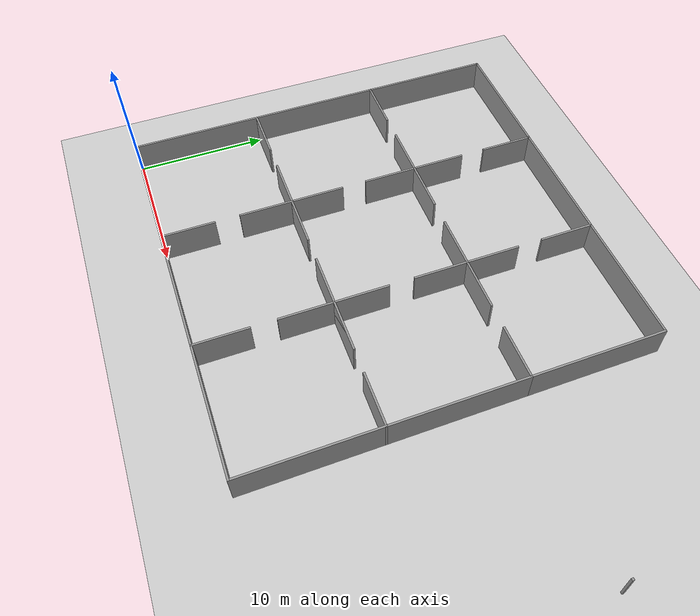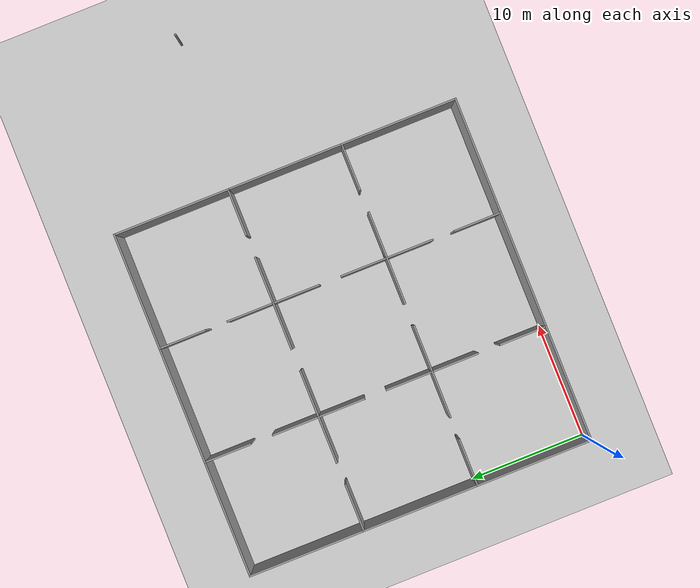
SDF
<sdf version="1.7">
 <world name="default">
  <light name="sun" type="directional">
   <pose>0 0 10 0 -0 0</pose>
   <diffuse>0.8 0.8 0.8 1</diffuse>
   <specular>0.2 0.2 0.2 1</specular>
   <attenuation>
    <range>1000</range>
    <constant>0.9</constant>
    <linear>0.01</linear>
    <quadratic>0.001</quadratic>
   </attenuation>
   <direction>-0.5 0.1 -0.9</direction>
   <spot><inner_angle>0</inner_angle><outer_angle>0</outer_angle><falloff>0</falloff></spot>
  </light>
  <model name="ground_plane">
   <static>1</static>
   <link name="link">
    <collision name="collision">
     <geometry><plane><normal>0 0 1</normal><size>100 100</size></plane></geometry>
     <surface>
      <contact><collide_bitmask>65535</collide_bitmask></contact>
      <friction><ode><mu>100</mu><mu2>50</mu2></ode></friction>
     </surface>
    </collision>
    <visual name="visual">
     <cast_shadows>0</cast_shadows>
     <geometry><plane><normal>0 0 1</normal><size>100 100</size></plane></geometry>
     <material>
      <script><uri>file://media/materials/scripts/gazebo.material</uri><name>Gazebo/Grey</name></script>
     </material>
    </visual>
   </link>
  </model>
  <gravity>0 0 -9.8</gravity>
  <magnetic_field>6e-06 2.3e-05 -4.2e-05</magnetic_field>
  <atmosphere type="adiabatic"/>
  <physics type="ode">
   <max_step_size>0.001</max_step_size>
   <real_time_factor>1</real_time_factor>
   <real_time_update_rate>1000</real_time_update_rate>
  </physics>
  <scene><ambient>0.4 0.4 0.4 1</ambient><background>0.7 0.7 0.7 1</background><shadows>1</shadows></scene>
  <spherical_coordinates>
   <surface_model>EARTH_WGS84</surface_model>
   <latitude_deg>0</latitude_deg>
   <longitude_deg>0</longitude_deg>
   <elevation>0</elevation>
   <heading_deg>0</heading_deg>
  </spherical_coordinates>
  <model name="Building_3x3">
   <pose>21.6715 15 0 0 -0 0</pose>
   <link name="Wall_17">
    <collision name="Wall_17_Collision">
     <geometry><box><size>4.15 0.15 2.5</size></box></geometry>
     <pose>0 0 1.25 0 -0 0</pose>
    </collision>
    <visual name="Wall_17_Visual">
     <pose>0 0 1.25 0 -0 0</pose>
     <geometry><box><size>4.15 0.15 2.5</size></box></geometry>
     <material>
      <script><uri>file://media/materials/scripts/gazebo.material</uri><name>Gazebo/Grey</name></script>
      <ambient>1 1 1 1</ambient>
     </material>
     <meta><layer>0</layer></meta>
    </visual>
    <pose>-13.6715 -5 0 0 -0 0</pose>
   </link>
   <link name="Wall_20">
    <collision name="Wall_20_Collision">
     <geometry><box><size>10.15 0.15 2.5</size></box></geometry>
     <pose>0 0 1.25 0 -0 0</pose>
    </collision>
    <visual name="Wall_20_Visual">
     <pose>0 0 1.25 0 -0 0</pose>
     <geometry><box><size>10.15 0.15 2.5</size></box></geometry>
     <material>
      <script><uri>file://media/materials/scripts/gazebo.material</uri><name>Gazebo/Grey</name></script>
      <ambient>1 1 1 1</ambient>
     </material>
     <meta><layer>0</layer></meta>
    </visual>
    <pose>-21.6715 -10 0 0 -0 1.5708</pose>
   </link>
   <link name="Wall_22">
    <collision name="Wall_22_Collision">
     <geometry><box><size>4.15 0.15 2.5</size></box></geometry>
     <pose>0 0 1.25 0 -0 0</pose>
    </collision>
    <visual name="Wall_22_Visual">
     <pose>0 0 1.25 0 -0 0</pose>
     <geometry><box><size>4.15 0.15 2.5</size></box></geometry>
     <material>
      <script><uri>file://media/materials/scripts/gazebo.material</uri><name>Gazebo/Grey</name></script>
      <ambient>1 1 1 1</ambient>
     </material>
     <meta><layer>0</layer></meta>
    </visual>
    <pose>-19.6715 -5 0 0 -0 0</pose>
   </link>
   <link name="Wall_26">
    <collision name="Wall_26_Collision">
     <geometry><box><size>10.15 0.15 2.5</size></box></geometry>
     <pose>0 0 1.25 0 -0 0</pose>
    </collision>
    <visual name="Wall_26_Visual">
     <pose>0 0 1.25 0 -0 0</pose>
     <geometry><box><size>10.15 0.15 2.5</size></box></geometry>
     <material>
      <script><uri>file://media/materials/scripts/gazebo.material</uri><name>Gazebo/Grey</name></script>
      <ambient>1 1 1 1</ambient>
     </material>
     <meta><layer>0</layer></meta>
    </visual>
    <pose>-16.6715 -15 0 0 -0 0</pose>
   </link>
   <link name="Wall_28">
    <collision name="Wall_28_Collision">
     <geometry><box><size>4.15 0.15 2.5</size></box></geometry>
     <pose>0 0 1.25 0 -0 0</pose>
    </collision>
    <visual name="Wall_28_Visual">
     <pose>0 0 1.25 0 -0 0</pose>
     <geometry><box><size>4.15 0.15 2.5</size></box></geometry>
     <material>
      <script><uri>file://media/materials/scripts/gazebo.material</uri><name>Gazebo/Grey</name></script>
      <ambient>1 1 1 1</ambient>
     </material>
     <meta><layer>0</layer></meta>
    </visual>
    <pose>-11.6715 -7 0 0 -0 1.5708</pose>
   </link>
   <link name="Wall_30">
    <collision name="Wall_30_Collision">
     <geometry><box><size>4.15 0.15 2.5</size></box></geometry>
     <pose>0 0 1.25 0 -0 0</pose>
    </collision>
    <visual name="Wall_30_Visual">
     <pose>0 0 1.25 0 -0 0</pose>
     <geometry><box><size>4.15 0.15 2.5</size></box></geometry>
     <material>
      <script><uri>file://media/materials/scripts/gazebo.material</uri><name>Gazebo/Grey</name></script>
      <ambient>1 1 1 1</ambient>
     </material>
     <meta><layer>0</layer></meta>
    </visual>
    <pose>-11.6715 -13 0 0 -0 1.5708</pose>
   </link>
   <link name="Wall_33">
    <collision name="Wall_33_Collision">
     <geometry><box><size>10.15 0.15 2.5</size></box></geometry>
     <pose>0 0 1.25 0 -0 0</pose>
    </collision>
    <visual name="Wall_33_Visual">
     <pose>0 0 1.25 0 -0 0</pose>
     <geometry><box><size>10.15 0.15 2.5</size></box></geometry>
     <material>
      <script><uri>file://media/materials/scripts/gazebo.material</uri><name>Gazebo/Grey</name></script>
      <ambient>1 1 1 1</ambient>
     </material>
     <meta><layer>0</layer></meta>
    </visual>
    <pose>-6.67153 -15 0 0 -0 0</pose>
   </link>
   <link name="Wall_35">
    <collision name="Wall_35_Collision">
     <geometry><box><size>4.15 0.15 2.5</size></box></geometry>
     <pose>0 0 1.25 0 -0 0</pose>
    </collision>
    <visual name="Wall_35_Visual">
     <pose>0 0 1.25 0 -0 0</pose>
     <geometry><box><size>4.15 0.15 2.5</size></box></geometry>
     <material>
      <script><uri>file://media/materials/scripts/gazebo.material</uri><name>Gazebo/Grey</name></script>
      <ambient>1 1 1 1</ambient>
     </material>
     <meta><layer>0</layer></meta>
    </visual>
    <pose>-1.67153 -13 0 0 -0 -1.5708</pose>
   </link>
   <link name="Wall_37">
    <collision name="Wall_37_Collision">
     <geometry><box><size>4.15 0.15 2.5</size></box></geometry>
     <pose>0 0 1.25 0 -0 0</pose>
    </collision>
    <visual name="Wall_37_Visual">
     <pose>0 0 1.25 0 -0 0</pose>
     <geometry><box><size>4.15 0.15 2.5</size></box></geometry>
     <material>
      <script><uri>file://media/materials/scripts/gazebo.material</uri><name>Gazebo/Grey</name></script>
      <ambient>1 1 1 1</ambient>
     </material>
     <meta><layer>0</layer></meta>
    </visual>
    <pose>-1.67153 -7 0 0 -0 1.5708</pose>
   </link>
   <link name="Wall_39">
    <collision name="Wall_39_Collision">
     <geometry><box><size>4.15 0.15 2.5</size></box></geometry>
     <pose>0 0 1.25 0 -0 0</pose>
    </collision>
    <visual name="Wall_39_Visual">
     <pose>0 0 1.25 0 -0 0</pose>
     <geometry><box><size>4.15 0.15 2.5</size></box></geometry>
     <material>
      <script><uri>file://media/materials/scripts/gazebo.material</uri><name>Gazebo/Grey</name></script>
      <ambient>1 1 1 1</ambient>
     </material>
     <meta><layer>0</layer></meta>
    </visual>
    <pose>-9.67153 -5 0 0 -0 0</pose>
   </link>
   <link name="Wall_41">
    <collision name="Wall_41_Collision">
     <geometry><box><size>8.15 0.15 2.5</size></box></geometry>
     <pose>0 0 1.25 0 -0 0</pose>
    </collision>
    <visual name="Wall_41_Visual">
     <pose>0 0 1.25 0 -0 0</pose>
     <geometry><box><size>8.15 0.15 2.5</size></box></geometry>
     <material>
      <script><uri>file://media/materials/scripts/gazebo.material</uri><name>Gazebo/Grey</name></script>
      <ambient>1 1 1 1</ambient>
     </material>
     <meta><layer>0</layer></meta>
    </visual>
    <pose>-1.67153 -5 0 0 -0 0</pose>
   </link>
   <link name="Wall_44">
    <collision name="Wall_44_Collision">
     <geometry><box><size>10.15 0.15 2.5</size></box></geometry>
     <pose>0 0 1.25 0 -0 0</pose>
    </collision>
    <visual name="Wall_44_Visual">
     <pose>0 0 1.25 0 -0 0</pose>
     <geometry><box><size>10.15 0.15 2.5</size></box></geometry>
     <material>
      <script><uri>file://media/materials/scripts/gazebo.material</uri><name>Gazebo/Grey</name></script>
      <ambient>1 1 1 1</ambient>
     </material>
     <meta><layer>0</layer></meta>
    </visual>
    <pose>3.32847 -15 0 0 -0 0</pose>
   </link>
   <link name="Wall_46">
    <collision name="Wall_46_Collision">
     <geometry><box><size>10.15 0.15 2.5</size></box></geometry>
     <pose>0 0 1.25 0 -0 0</pose>
    </collision>
    <visual name="Wall_46_Visual">
     <pose>0 0 1.25 0 -0 0</pose>
     <geometry><box><size>10.15 0.15 2.5</size></box></geometry>
     <material>
      <script><uri>file://media/materials/scripts/gazebo.material</uri><name>Gazebo/Grey</name></script>
      <ambient>1 1 1 1</ambient>
     </material>
     <meta><layer>0</layer></meta>
    </visual>
    <pose>8.32847 -10 0 0 -0 1.5708</pose>
   </link>
   <link name="Wall_48">
    <collision name="Wall_48_Collision">
     <geometry><box><size>4.15 0.15 2.5</size></box></geometry>
     <pose>0 0 1.25 0 -0 0</pose>
    </collision>
    <visual name="Wall_48_Visual">
     <pose>0 0 1.25 0 -0 0</pose>
     <geometry><box><size>4.15 0.15 2.5</size></box></geometry>
     <material>
      <script><uri>file://media/materials/scripts/gazebo.material</uri><name>Gazebo/Grey</name></script>
      <ambient>1 1 1 1</ambient>
     </material>
     <meta><layer>0</layer></meta>
    </visual>
    <pose>6.32847 -5 0 0 -0 3.14159</pose>
   </link>
   <link name="Wall_50">
    <collision name="Wall_50_Collision">
     <geometry><box><size>0.16 0.15 2.5</size></box></geometry>
     <pose>0 0 1.25 0 -0 0</pose>
    </collision>
    <visual name="Wall_50_Visual">
     <pose>0 0 1.25 0 -0 0</pose>
     <geometry><box><size>0.16 0.15 2.5</size></box></geometry>
     <material>
      <script><uri>file://media/materials/scripts/gazebo.material</uri><name>Gazebo/Grey</name></script>
      <ambient>1 1 1 1</ambient>
     </material>
     <meta><layer>0</layer></meta>
    </visual>
    <pose>21.6665 4.32487 0 0 -0 0</pose>
   </link>
   <link name="Wall_52">
    <collision name="Wall_52_Collision">
     <geometry><box><size>4.15 0.15 2.5</size></box></geometry>
     <pose>0 0 1.25 0 -0 0</pose>
    </collision>
    <visual name="Wall_52_Visual">
     <pose>0 0 1.25 0 -0 0</pose>
     <geometry><box><size>4.15 0.15 2.5</size></box></geometry>
     <material>
      <script><uri>file://media/materials/scripts/gazebo.material</uri><name>Gazebo/Grey</name></script>
      <ambient>1 1 1 1</ambient>
     </material>
     <meta><layer>0</layer></meta>
    </visual>
    <pose>0.328472 -5 0 0 -0 0</pose>
   </link>
   <link name="Wall_54">
    <collision name="Wall_54_Collision">
     <geometry><box><size>20.15 0.15 2.5</size></box></geometry>
     <pose>0 0 1.25 0 -0 0</pose>
    </collision>
    <visual name="Wall_54_Visual">
     <pose>0 0 1.25 0 -0 0</pose>
     <geometry><box><size>20.15 0.15 2.5</size></box></geometry>
     <material>
      <script><uri>file://media/materials/scripts/gazebo.material</uri><name>Gazebo/Grey</name></script>
      <ambient>1 1 1 1</ambient>
     </material>
     <meta><layer>0</layer></meta>
    </visual>
    <pose>-21.6715 -5 0 0 -0 1.5708</pose>
   </link>
   <link name="Wall_56">
    <collision name="Wall_56_Collision">
     <geometry><box><size>10.15 0.15 2.5</size></box></geometry>
     <pose>0 0 1.25 0 -0 0</pose>
    </collision>
    <visual name="Wall_56_Visual">
     <pose>0 0 1.25 0 -0 0</pose>
     <geometry><box><size>10.15 0.15 2.5</size></box></geometry>
     <material>
      <script><uri>file://media/materials/scripts/gazebo.material</uri><name>Gazebo/Grey</name></script>
      <ambient>1 1 1 1</ambient>
     </material>
     <meta><layer>0</layer></meta>
    </visual>
    <pose>-21.6715 10 0 0 -0 1.5708</pose>
   </link>
   <link name="Wall_58">
    <collision name="Wall_58_Collision">
     <geometry><box><size>10.15 0.15 2.5</size></box></geometry>
     <pose>0 0 1.25 0 -0 0</pose>
    </collision>
    <visual name="Wall_58_Visual">
     <pose>0 0 1.25 0 -0 0</pose>
     <geometry><box><size>10.15 0.15 2.5</size></box></geometry>
     <material>
      <script><uri>file://media/materials/scripts/gazebo.material</uri><name>Gazebo/Grey</name></script>
      <ambient>1 1 1 1</ambient>
     </material>
     <meta><layer>0</layer></meta>
    </visual>
    <pose>3.32847 15 0 0 -0 0</pose>
   </link>
   <link name="Wall_60">
    <collision name="Wall_60_Collision">
     <geometry><box><size>10.15 0.15 2.5</size></box></geometry>
     <pose>0 0 1.25 0 -0 0</pose>
    </collision>
    <visual name="Wall_60_Visual">
     <pose>0 0 1.25 0 -0 0</pose>
     <geometry><box><size>10.15 0.15 2.5</size></box></geometry>
     <material>
      <script><uri>file://media/materials/scripts/gazebo.material</uri><name>Gazebo/Grey</name></script>
      <ambient>1 1 1 1</ambient>
     </material>
     <meta><layer>0</layer></meta>
    </visual>
    <pose>-6.67153 15 0 0 -0 0</pose>
   </link>
   <link name="Wall_62">
    <collision name="Wall_62_Collision">
     <geometry><box><size>10.15 0.15 2.5</size></box></geometry>
     <pose>0 0 1.25 0 -0 0</pose>
    </collision>
    <visual name="Wall_62_Visual">
     <pose>0 0 1.25 0 -0 0</pose>
     <geometry><box><size>10.15 0.15 2.5</size></box></geometry>
     <material>
      <script><uri>file://media/materials/scripts/gazebo.material</uri><name>Gazebo/Grey</name></script>
      <ambient>1 1 1 1</ambient>
     </material>
     <meta><layer>0</layer></meta>
    </visual>
    <pose>-16.6715 15 0 0 -0 0</pose>
   </link>
   <link name="Wall_64">
    <collision name="Wall_64_Collision">
     <geometry><box><size>10.15 0.15 2.5</size></box></geometry>
     <pose>0 0 1.25 0 -0 0</pose>
    </collision>
    <visual name="Wall_64_Visual">
     <pose>0 0 1.25 0 -0 0</pose>
     <geometry><box><size>10.15 0.15 2.5</size></box></geometry>
     <material>
      <script><uri>file://media/materials/scripts/gazebo.material</uri><name>Gazebo/Grey</name></script>
      <ambient>1 1 1 1</ambient>
     </material>
     <meta><layer>0</layer></meta>
    </visual>
    <pose>8.32847 10 0 0 -0 -1.5708</pose>
   </link>
   <link name="Wall_66">
    <collision name="Wall_66_Collision">
     <geometry><box><size>10.15 0.15 2.5</size></box></geometry>
     <pose>0 0 1.25 0 -0 0</pose>
    </collision>
    <visual name="Wall_66_Visual">
     <pose>0 0 1.25 0 -0 0</pose>
     <geometry><box><size>10.15 0.15 2.5</size></box></geometry>
     <material>
      <script><uri>file://media/materials/scripts/gazebo.material</uri><name>Gazebo/Grey</name></script>
      <ambient>1 1 1 1</ambient>
     </material>
     <meta><layer>0</layer></meta>
    </visual>
    <pose>8.32847 0 0 0 -0 -1.5708</pose>
   </link>
   <link name="Wall_68">
    <collision name="Wall_68_Collision">
     <geometry><box><size>4.15 0.15 2.5</size></box></geometry>
     <pose>0 0 1.25 0 -0 0</pose>
    </collision>
    <visual name="Wall_68_Visual">
     <pose>0 0 1.25 0 -0 0</pose>
     <geometry><box><size>4.15 0.15 2.5</size></box></geometry>
     <material>
      <script><uri>file://media/materials/scripts/gazebo.material</uri><name>Gazebo/Grey</name></script>
      <ambient>1 1 1 1</ambient>
     </material>
     <meta><layer>0</layer></meta>
    </visual>
    <pose>-19.6715 5 0 0 -0 0</pose>
   </link>
   <link name="Wall_70">
    <collision name="Wall_70_Collision">
     <geometry><box><size>4.15 0.15 2.5</size></box></geometry>
     <pose>0 0 1.25 0 -0 0</pose>
    </collision>
    <visual name="Wall_70_Visual">
     <pose>0 0 1.25 0 -0 0</pose>
     <geometry><box><size>4.15 0.15 2.5</size></box></geometry>
     <material>
      <script><uri>file://media/materials/scripts/gazebo.material</uri><name>Gazebo/Grey</name></script>
      <ambient>1 1 1 1</ambient>
     </material>
     <meta><layer>0</layer></meta>
    </visual>
    <pose>-13.6715 5 0 0 -0 0</pose>
   </link>
   <link name="Wall_72">
    <collision name="Wall_72_Collision">
     <geometry><box><size>4.15 0.15 2.5</size></box></geometry>
     <pose>0 0 1.25 0 -0 0</pose>
    </collision>
    <visual name="Wall_72_Visual">
     <pose>0 0 1.25 0 -0 0</pose>
     <geometry><box><size>4.15 0.15 2.5</size></box></geometry>
     <material>
      <script><uri>file://media/materials/scripts/gazebo.material</uri><name>Gazebo/Grey</name></script>
      <ambient>1 1 1 1</ambient>
     </material>
     <meta><layer>0</layer></meta>
    </visual>
    <pose>-11.6715 3 0 0 -0 -1.5708</pose>
   </link>
   <link name="Wall_74">
    <collision name="Wall_74_Collision">
     <geometry><box><size>4.15 0.15 2.5</size></box></geometry>
     <pose>0 0 1.25 0 -0 0</pose>
    </collision>
    <visual name="Wall_74_Visual">
     <pose>0 0 1.25 0 -0 0</pose>
     <geometry><box><size>4.15 0.15 2.5</size></box></geometry>
     <material>
      <script><uri>file://media/materials/scripts/gazebo.material</uri><name>Gazebo/Grey</name></script>
      <ambient>1 1 1 1</ambient>
     </material>
     <meta><layer>0</layer></meta>
    </visual>
    <pose>-11.6715 -3 0 0 -0 1.5708</pose>
   </link>
   <link name="Wall_76">
    <collision name="Wall_76_Collision">
     <geometry><box><size>4.15 0.15 2.5</size></box></geometry>
     <pose>0 0 1.25 0 -0 0</pose>
    </collision>
    <visual name="Wall_76_Visual">
     <pose>0 0 1.25 0 -0 0</pose>
     <geometry><box><size>4.15 0.15 2.5</size></box></geometry>
     <material>
      <script><uri>file://media/materials/scripts/gazebo.material</uri><name>Gazebo/Grey</name></script>
      <ambient>1 1 1 1</ambient>
     </material>
     <meta><layer>0</layer></meta>
    </visual>
    <pose>-3.67153 5 0 0 -0 3.14159</pose>
   </link>
   <link name="Wall_78">
    <collision name="Wall_78_Collision">
     <geometry><box><size>4.15 0.15 2.5</size></box></geometry>
     <pose>0 0 1.25 0 -0 0</pose>
    </collision>
    <visual name="Wall_78_Visual">
     <pose>0 0 1.25 0 -0 0</pose>
     <geometry><box><size>4.15 0.15 2.5</size></box></geometry>
     <material>
      <script><uri>file://media/materials/scripts/gazebo.material</uri><name>Gazebo/Grey</name></script>
      <ambient>1 1 1 1</ambient>
     </material>
     <meta><layer>0</layer></meta>
    </visual>
    <pose>-9.67153 5 0 0 -0 0</pose>
   </link>
   <link name="Wall_80">
    <collision name="Wall_80_Collision">
     <geometry><box><size>4.15 0.15 2.5</size></box></geometry>
     <pose>0 0 1.25 0 -0 0</pose>
    </collision>
    <visual name="Wall_80_Visual">
     <pose>0 0 1.25 0 -0 0</pose>
     <geometry><box><size>4.15 0.15 2.5</size></box></geometry>
     <material>
      <script><uri>file://media/materials/scripts/gazebo.material</uri><name>Gazebo/Grey</name></script>
      <ambient>1 1 1 1</ambient>
     </material>
     <meta><layer>0</layer></meta>
    </visual>
    <pose>-1.67153 3 0 0 -0 -1.5708</pose>
   </link>
   <link name="Wall_82">
    <collision name="Wall_82_Collision">
     <geometry><box><size>4.15 0.15 2.5</size></box></geometry>
     <pose>0 0 1.25 0 -0 0</pose>
    </collision>
    <visual name="Wall_82_Visual">
     <pose>0 0 1.25 0 -0 0</pose>
     <geometry><box><size>4.15 0.15 2.5</size></box></geometry>
     <material>
      <script><uri>file://media/materials/scripts/gazebo.material</uri><name>Gazebo/Grey</name></script>
      <ambient>1 1 1 1</ambient>
     </material>
     <meta><layer>0</layer></meta>
    </visual>
    <pose>-1.67153 -3 0 0 -0 1.5708</pose>
   </link>
   <link name="Wall_84">
    <collision name="Wall_84_Collision">
     <geometry><box><size>4.15 0.15 2.5</size></box></geometry>
     <pose>0 0 1.25 0 -0 0</pose>
    </collision>
    <visual name="Wall_84_Visual">
     <pose>0 0 1.25 0 -0 0</pose>
     <geometry><box><size>4.15 0.15 2.5</size></box></geometry>
     <material>
      <script><uri>file://media/materials/scripts/gazebo.material</uri><name>Gazebo/Grey</name></script>
      <ambient>1 1 1 1</ambient>
     </material>
     <meta><layer>0</layer></meta>
    </visual>
    <pose>0.328472 5 0 0 -0 0</pose>
   </link>
   <link name="Wall_86">
    <collision name="Wall_86_Collision">
     <geometry><box><size>4.15 0.15 2.5</size></box></geometry>
     <pose>0 0 1.25 0 -0 0</pose>
    </collision>
    <visual name="Wall_86_Visual">
     <pose>0 0 1.25 0 -0 0</pose>
     <geometry><box><size>4.15 0.15 2.5</size></box></geometry>
     <material>
      <script><uri>file://media/materials/scripts/gazebo.material</uri><name>Gazebo/Grey</name></script>
      <ambient>1 1 1 1</ambient>
     </material>
     <meta><layer>0</layer></meta>
    </visual>
    <pose>6.32847 5 0 0 -0 0</pose>
   </link>
   <link name="Wall_88">
    <collision name="Wall_88_Collision">
     <geometry><box><size>4.15 0.15 2.5</size></box></geometry>
     <pose>0 0 1.25 0 -0 0</pose>
    </collision>
    <visual name="Wall_88_Visual">
     <pose>0 0 1.25 0 -0 0</pose>
     <geometry><box><size>4.15 0.15 2.5</size></box></geometry>
     <material>
      <script><uri>file://media/materials/scripts/gazebo.material</uri><name>Gazebo/Grey</name></script>
      <ambient>1 1 1 1</ambient>
     </material>
     <meta><layer>0</layer></meta>
    </visual>
    <pose>-1.67153 13 0 0 -0 -1.5708</pose>
   </link>
   <link name="Wall_90">
    <collision name="Wall_90_Collision">
     <geometry><box><size>4.15 0.15 2.5</size></box></geometry>
     <pose>0 0 1.25 0 -0 0</pose>
    </collision>
    <visual name="Wall_90_Visual">
     <pose>0 0 1.25 0 -0 0</pose>
     <geometry><box><size>4.15 0.15 2.5</size></box></geometry>
     <material>
      <script><uri>file://media/materials/scripts/gazebo.material</uri><name>Gazebo/Grey</name></script>
      <ambient>1 1 1 1</ambient>
     </material>
     <meta><layer>0</layer></meta>
    </visual>
    <pose>-1.67153 7 0 0 -0 1.5708</pose>
   </link>
   <link name="Wall_92">
    <collision name="Wall_92_Collision">
     <geometry><box><size>4.15 0.15 2.5</size></box></geometry>
     <pose>0 0 1.25 0 -0 0</pose>
    </collision>
    <visual name="Wall_92_Visual">
     <pose>0 0 1.25 0 -0 0</pose>
     <geometry><box><size>4.15 0.15 2.5</size></box></geometry>
     <material>
      <script><uri>file://media/materials/scripts/gazebo.material</uri><name>Gazebo/Grey</name></script>
      <ambient>1 1 1 1</ambient>
     </material>
     <meta><layer>0</layer></meta>
    </visual>
    <pose>-11.6715 7 0 0 -0 1.5708</pose>
   </link>
   <link name="Wall_94">
    <collision name="Wall_94_Collision">
     <geometry><box><size>4.15 0.15 2.5</size></box></geometry>
     <pose>0 0 1.25 0 -0 0</pose>
    </collision>
    <visual name="Wall_94_Visual">
     <pose>0 0 1.25 0 -0 0</pose>
     <geometry><box><size>4.15 0.15 2.5</size></box></geometry>
     <material>
      <script><uri>file://media/materials/scripts/gazebo.material</uri><name>Gazebo/Grey</name></script>
      <ambient>1 1 1 1</ambient>
     </material>
     <meta><layer>0</layer></meta>
    </visual>
    <pose>-11.6715 13 0 0 -0 1.5708</pose>
   </link>
   <static>1</static>
  </model>
 </world>
</sdf>
